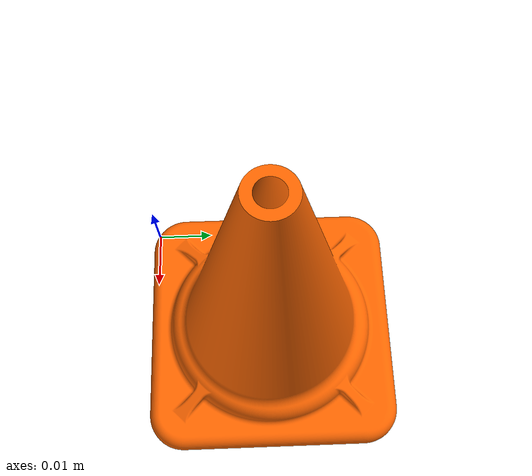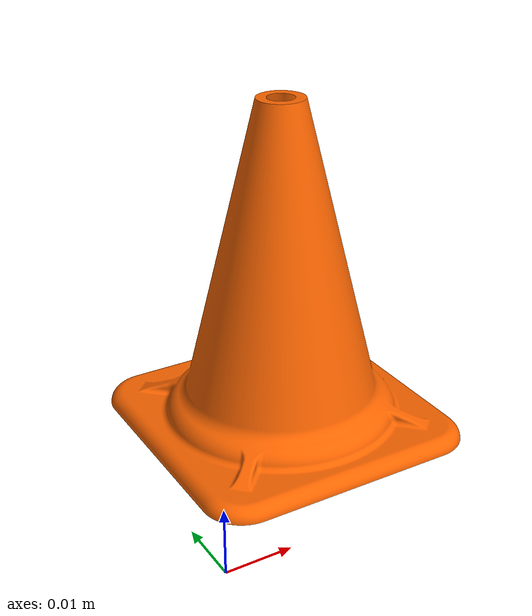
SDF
<?xml version="1.0"?>
<sdf version="1.10">
  <model name="traffic_cone">
    <static>false</static>
    <link name="link">
      <pose>0 0 0.006 0 0 0</pose>
      <inertial>
        <mass>0.0072</mass>
        <!-- cono sólido: Ixx=Iyy=(3m/80)*(h²+4r²), Izz=(3/10)*m*r²  h=0.071m r=0.0275m -->
        <inertia>
          <ixx>2.2e-6</ixx>
          <ixy>0</ixy>
          <ixz>0</ixz>
          <iyy>2.2e-6</iyy>
          <iyz>0</iyz>
          <izz>1.6e-6</izz>
        </inertia>
      </inertial>
      <visual name="visual">
        <geometry>
          <mesh>
            <uri>model://traffic_cone/meshes/traffic_cone.stl</uri>
            <scale>0.001 0.001 0.001</scale>
          </mesh>
        </geometry>
        <material>
          <ambient>1.0 0.4 0.0 1</ambient>
          <diffuse>1.0 0.4 0.0 1</diffuse>
          <specular>0.3 0.3 0.3 1</specular>
        </material>
      </visual>
      <collision name="collision">
        <geometry>
          <cylinder>
            <radius>0.02</radius>
            <length>0.065</length>
          </cylinder>
        </geometry>
      </collision>
    </link>
  </model>
</sdf>
